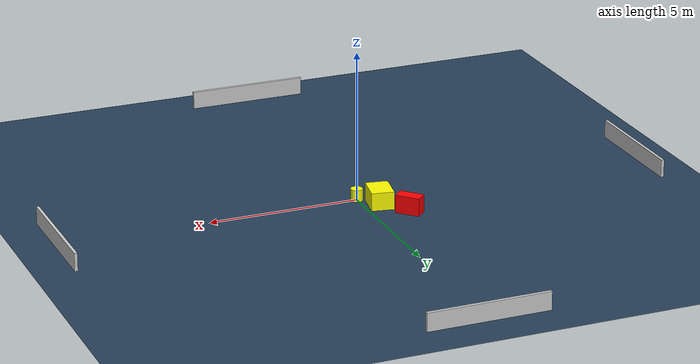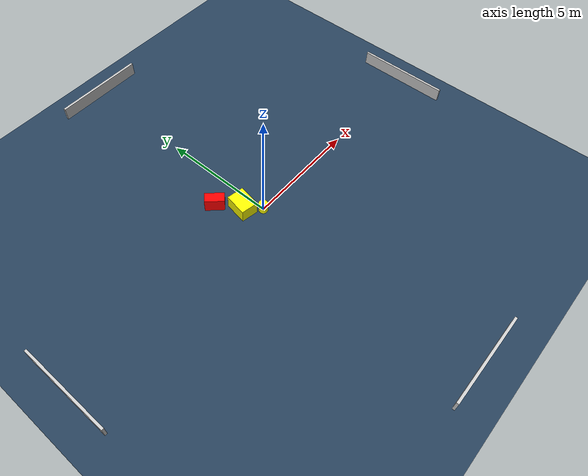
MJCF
<?xml version="1.0" ?>
<mujoco model="generated_environment">
  <option timestep="0.01" integrator="RK4" cone="elliptic"/>
  <default>
    <geom density="1"/>
  </default>
  <asset>
    <texture builtin="gradient" height="3072" name="skybox" rgb1="0.3 0.5 0.7" rgb2="0 0 0" type="skybox" width="512"/>
    <texture builtin="checker" height="300" name="groundplane" rgb1="0.2 0.3 0.4" rgb2="0.1 0.2 0.3" type="2d" width="300"/>
    <material name="groundplane" reflectance="0.2" texrepeat="5 5" texture="groundplane"/>
  </asset>
  <worldbody>
    <light dir="0 0 -1" directional="true" pos="0 0 1.5"/>
    <geom condim="3" friction="0.5 0.005 0.001" material="groundplane" name="floor" pos="0 0 0" size="0 0 0.05" type="plane"/>
    <body name="walls">
      <geom name="wall_1" condim="4" pos="-10.0 0.0 0.3" rgba="0.800000011920929 0.800000011920929 0.800000011920929 1.0" size="0.05 2.0 0.3" type="box"/>
      <geom name="wall_2" condim="4" pos="10.0 0.0 0.3" rgba="0.800000011920929 0.800000011920929 0.800000011920929 1.0" size="0.05 2.0 0.3" type="box"/>
      <geom name="wall_3" condim="4" pos="0.0 -10.0 0.3" rgba="0.800000011920929 0.800000011920929 0.800000011920929 1.0" size="2.0 0.05 0.3" type="box"/>
      <geom name="wall_4" condim="4" pos="0.0 10.0 0.3" rgba="0.800000011920929 0.800000011920929 0.800000011920929 1.0" size="2.0 0.05 0.3" type="box"/>
    </body>
    <body name="robot">
      <joint name="joint_x" type="slide" pos="0 0 0" axis="1 0 0"/>
      <joint name="joint_y" type="slide" pos="0 0 0" axis="0 1 0"/>
      <geom name="robot" type="cylinder" pos="0.0 0.0 0.2" size="0.2 0.2 0.0" mass="5.0" friction="1.0 0.005 0.0001" condim="4" rgba="1.0 1.0 0.0 1.0"/>
    </body>
    <body name="obstacle_1_movable">
      <geom name="obstacle_1_movable" condim="4" pos="-0.5240839846027026 0.6482714115965759 0.3" euler="0 0 349.77578811420136" friction="0.0 0.005 0.001" rgba="1.0 1.0 0.0 1.0" size="0.3723511621020842 0.4825465379849706 0.3" type="box" mass="0.1"/>
      <joint type="free"/>
    </body>
    <body name="obstacle_2_static">
      <geom name="obstacle_2_static" condim="4" pos="-1.1498732529517859 1.5965415577563873 0.3" euler="0 0 313.58405990331636" friction="0.0 0.005 0.001" rgba="1.0 0.0 0.0 1.0" size="0.40972408028670476 0.21394934703850166 0.3" type="box"/>
    </body>
  </worldbody>
  <actuator>
    <motor name="actuator_x" joint="joint_x" gear="1" ctrlrange="-1 1"/>
    <motor name="actuator_y" joint="joint_y" gear="1" ctrlrange="-1 1"/>
  </actuator>
</mujoco>
